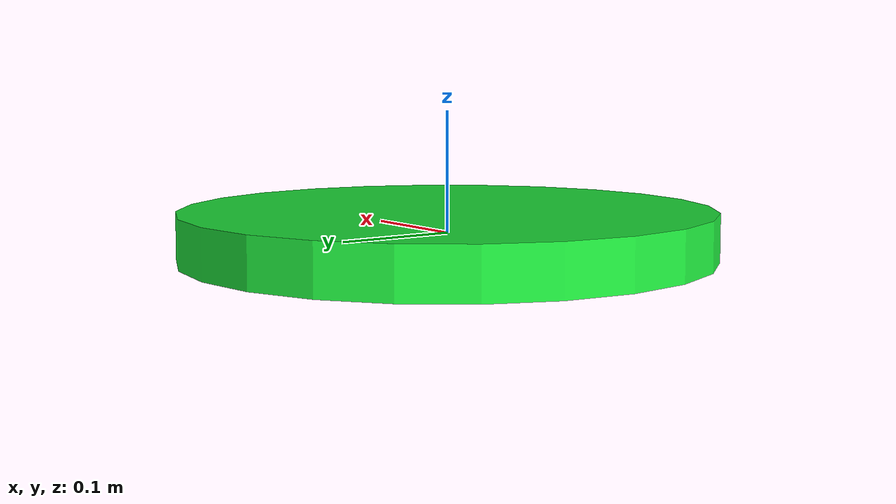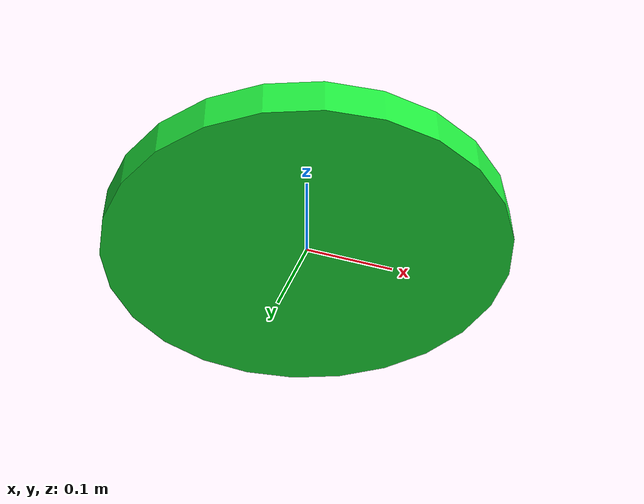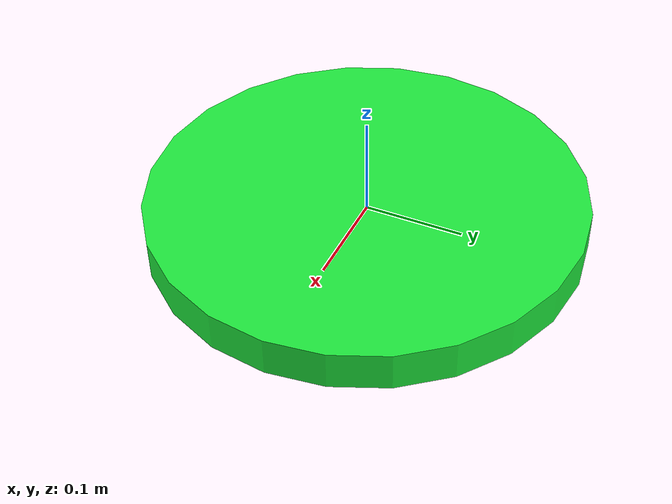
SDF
<?xml version="1.0" ?>
<sdf version="1.6">
  <model name="edge_goal_marker">
    <static>true</static>
    <link name="link">
      <collision name="collision">
        <geometry>
          <cylinder>
            <radius>0.22</radius>
            <length>0.04</length>
          </cylinder>
        </geometry>
      </collision>
      <visual name="visual">
        <geometry>
          <cylinder>
            <radius>0.22</radius>
            <length>0.04</length>
          </cylinder>
        </geometry>
        <material>
          <ambient>0.10 0.85 0.20 1</ambient>
          <diffuse>0.12 0.92 0.24 1</diffuse>
          <specular>0.10 0.10 0.10 1</specular>
          <emissive>0.02 0.15 0.04 1</emissive>
        </material>
      </visual>
    </link>
  </model>
</sdf>
